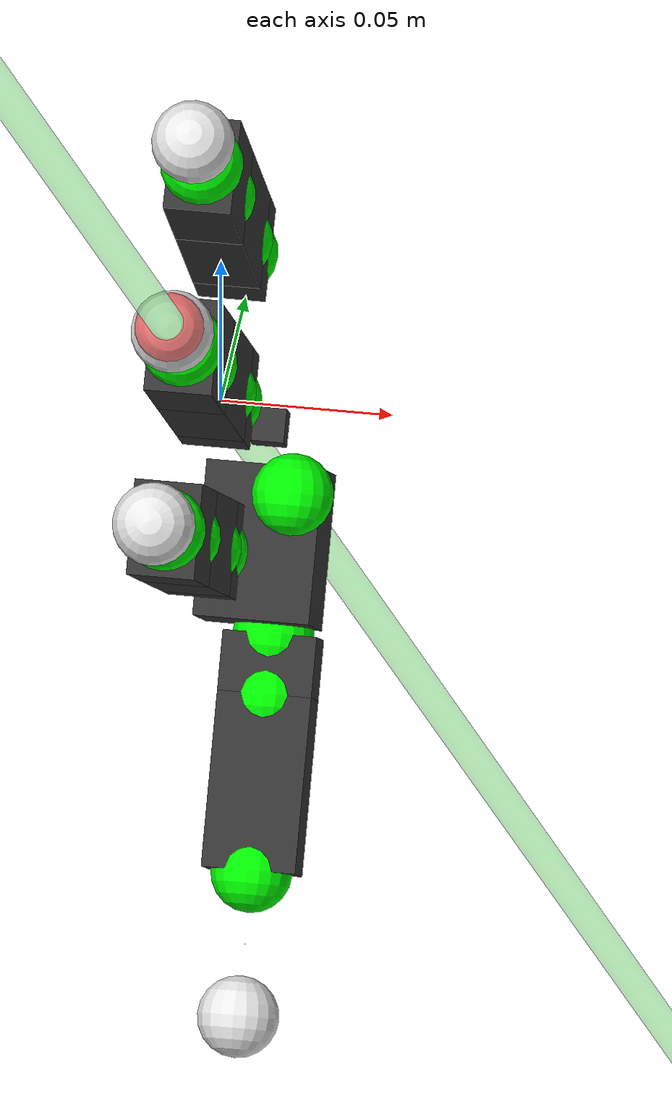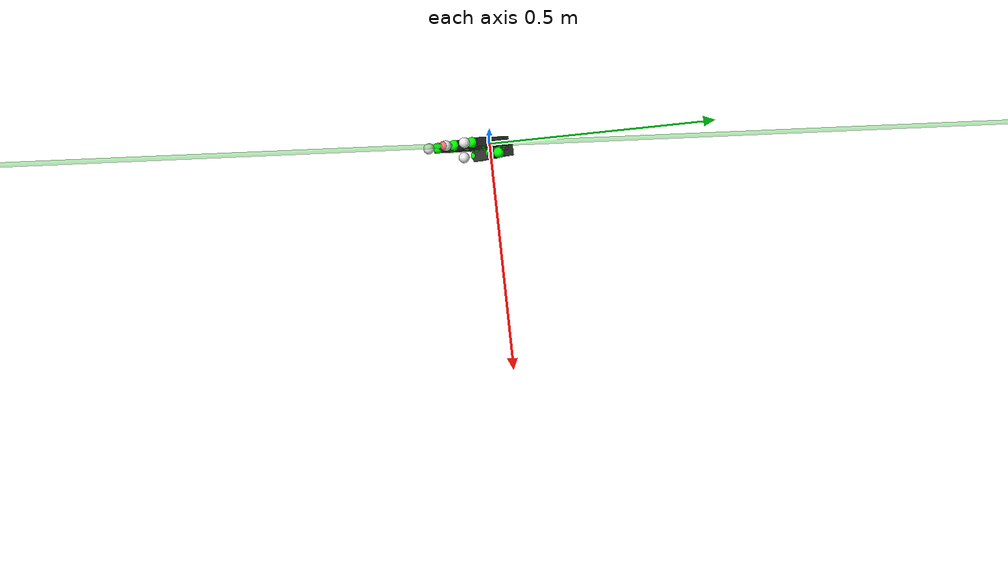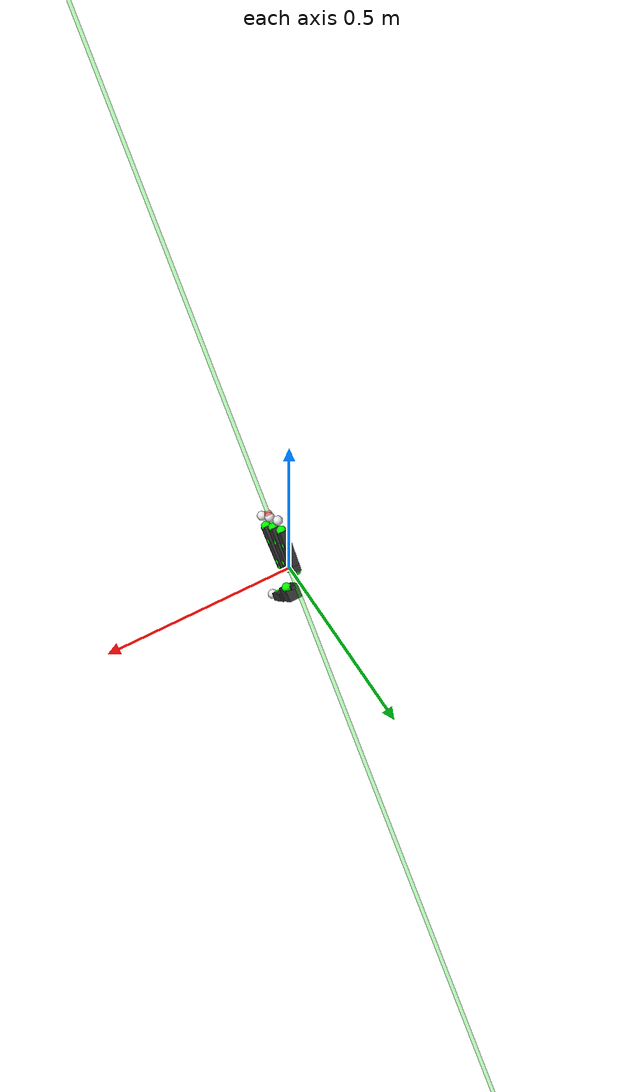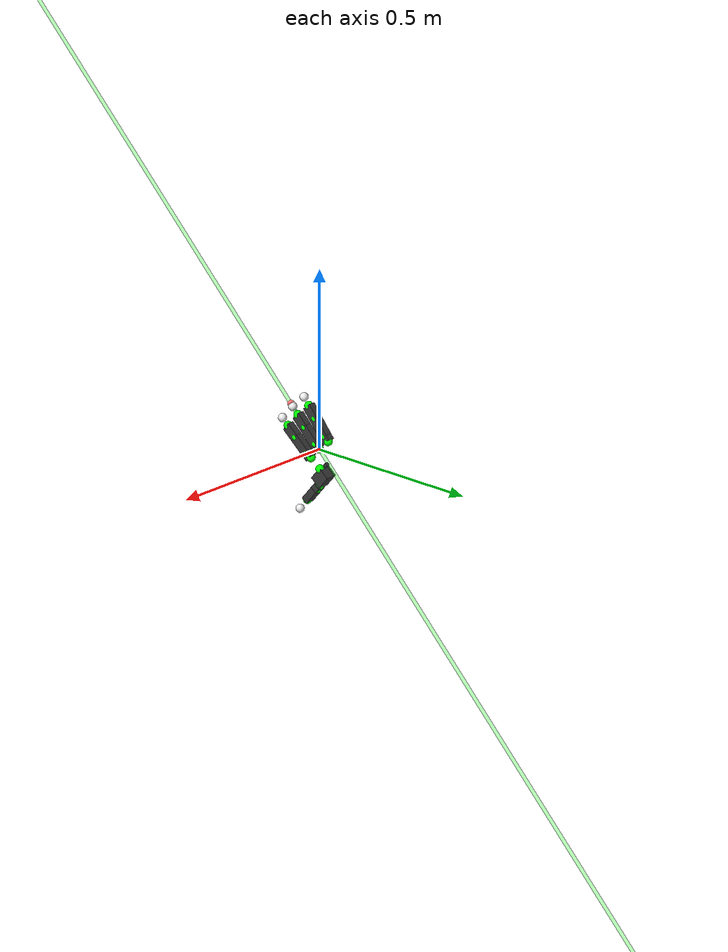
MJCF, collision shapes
<mujoco model="allegro">
  <compiler angle="radian"/>
  <default>
    <joint damping="1"/>
    <muscle ctrllimited="true" ctrlrange="0 100"/>
    <motor ctrllimited="true" ctrlrange="-3 3" gear="1"/>
    <general ctrllimited="true"/>
   </default>

    <contact>
        <exclude body1="allegro_hand" body2="link_12.0"/>
        <exclude body1="allegro_hand" body2="link_0.0"/>
        <exclude body1="allegro_hand" body2="link_4.0"/>
        <exclude body1="allegro_hand" body2="link_8.0"/>
    </contact>

  <asset>
    <mesh name="base_link" file="allegro/meshes/base_link.obj"/>
    <mesh name="link_0.0" file="allegro/meshes/link_0.0.obj"/>
    <mesh name="link_1.0" file="allegro/meshes/link_1.0.obj"/>
    <mesh name="link_2.0" file="allegro/meshes/link_2.0.obj"/>
    <mesh name="link_3.0" file="allegro/meshes/link_3.0.obj"/>
    <mesh name="link_3.0_tip" file="allegro/meshes/link_3.0_tip.obj"/>
    <mesh name="link_12.0_right" file="allegro/meshes/link_12.0_right.obj"/>
    <mesh name="link_13.0" file="allegro/meshes/link_13.0.obj"/>
    <mesh name="link_14.0" file="allegro/meshes/link_14.0.obj"/>
    <mesh name="link_15.0" file="allegro/meshes/link_15.0.obj"/>
    <mesh name="link_15.0_tip" file="allegro/meshes/link_15.0_tip.obj"/>

  </asset>

  <worldbody>
    <body name="allegro_hand" pos="0 0 0" quat=" 0 0 -0.3826834 0.9238795" >
        <site name="ft_frame" pos="0 0 0" size="0.01 0.01 0.01" rgba="1 0 0 1" type="sphere" group="1" />
            <camera name="right_eye_in_hand" pos="-0.0212 0.115 -0.042" quat="0.524567500309  -0.19585314194  -0.69700309  -0.19585314194" fovy="78" resolution="960 600"/>
            <!-- This site was added for visualization. -->
        <body name="eef" pos="0 0 0.145" quat="1 0 0 0">
            <site name="grip_site" pos="0 0 0" size="0.01 0.01 0.01" rgba="1 0 0 0.5" type="sphere" group="1"/>
            <site name="ee_x" pos="0.1 0 0" size="0.005 .1"  quat="1 1 0 0 " rgba="1 0 0 0" type="cylinder" group="1"/>
            <site name="ee_y" pos="0 0.1 0" size="0.005 .1" quat="1 0 0 0" rgba="0 1 0 0" type="cylinder" group="1"/>
            <site name="ee_z" pos="0 0 0.1" size="0.005 .1" quat="1 0 0 0" rgba="0 0 1 0" type="cylinder" group="1"/>
            <!-- This site was added for visualization. -->
            <site name="grip_site_cylinder" pos="0 0 0" size="0.005 10" rgba="0 1 0 0.3" type="cylinder" group="1"/>
        </body>
        <geom type="mesh" contype="0" conaffinity="0" group="1" density="0" rgba="0.2 0.2 0.2 1" mesh="base_link"/>
        <geom size="0.005 0.005 0.005" pos="-0.0093 0 -0.0475" type="box" rgba="0.2 0.2 0.2 1"/>
        <body name="link_0.0" pos="0 0.0435 -0.001542" quat="0.999048 -0.0436194 0 0">
        <inertial pos="0 0 0" quat="0.707107 0.707107 0 0" mass="0.0119" diaginertia="1.01667e-06 1.01667e-06 6.47677e-07"/>
        <joint name="joint_0.0" pos="0 0 0" axis="0 0 1" range="-0.57 0.57" actuatorfrcrange="-0.35 0.35" damping="1.0"/>
            <site name="index_0_site" pos="0 0 0" size="0.012 0.012 0.012" rgba="0 1 0 1" type="sphere" group="2"/>

        <geom type="mesh" contype="0" conaffinity="0" group="1" density="0" rgba="0.2 0.2 0.2 1" mesh="link_0.0"/>
        <geom size="0.0098 0.01375 0.0082" pos="0 0 0.0082" type="box" rgba="0.2 0.2 0.2 1"/>
        <body name="link_1.0" pos="0 0 0.0164">
            <inertial pos="0 0 0" quat="0.702596 0.559386 -0.178354 0.402039" mass="0.065" diaginertia="6.12799e-05 6.12799e-05 6.12799e-05"/>
            <joint name="joint_1.0" pos="0 0 0" axis="0 1 0" range="-0.296 1.71" actuatorfrcrange="-0.35 0.35" damping="1.0"/>
                <site name="index_1_site" pos="0.0 0 0" size="0.012 0.012 0.012" rgba="0 1 0 1" type="sphere" group="2"/>
            <geom type="mesh" contype="0" conaffinity="0" group="1" density="0" rgba="0.2 0.2 0.2 1" mesh="link_1.0"/>
            <geom size="0.0098 0.01375 0.027" pos="0 0 0.027" type="box" rgba="0.2 0.2 0.2 1"/>
            <body name="link_2.0" pos="0 0 0.054">
            <inertial pos="0 0 0" quat="0.719796 0.528175 -0.157463 0.422055" mass="0.0355" diaginertia="2.20969e-05 2.20969e-05 2.20969e-05"/>
            <joint name="joint_2.0" pos="0 0 0" axis="0 1 0" range="-0.274 1.809" actuatorfrcrange="-0.35 0.35" damping="1.0"/>
                <site name="index_2_site" pos="0 0 0" size="0.012 0.012 0.012" rgba="0 1 0 1" type="sphere" group="2"/>

            <geom type="mesh" contype="0" conaffinity="0" group="1" density="0" rgba="0.2 0.2 0.2 1" mesh="link_2.0"/>
            <geom size="0.0098 0.01375 0.0192" pos="0 0 0.0192" type="box" rgba="0.2 0.2 0.2 1"/>
            <body name="link_3.0" pos="0 0 0.0384">
                <inertial pos="0 0 0.0169909" mass="0.0264" diaginertia="9.67371e-06 9.67371e-06 5.3186e-06"/>
                <joint name="joint_3.0" pos="0 0 0" axis="0 1 0" range="-0.327 1.718" actuatorfrcrange="-0.35 0.35" damping="1.0"/>
                    <site name="index_3_site" pos="0 0 0" size="0.012 0.012 0.012" rgba="0 1 0 1" type="sphere" group="2"/>
                <geom type="mesh" contype="0" conaffinity="0" group="1" density="0" rgba="0.2 0.2 0.2 1" mesh="link_3.0"/>
                <geom size="0.0001" pos="0 0 0.01335" rgba="0.2 0.2 0.2 1"/>
                <geom pos="0 0 0.02" quat="1 0 0 0" type="mesh" contype="0" conaffinity="0" group="1" density="0" rgba="0.9 0.9 0.9 1" mesh="digit2_sensor_base"/>
                <geom pos="0 0 0.0267" type="mesh" contype="0" conaffinity="0" group="1" density="0" rgba="0.9 0.9 0.9 1" mesh="link_3.0_tip"/>
                <geom size="0.012" pos="0 0 0.0267" rgba="0.9 0.9 0.9 1"/>
            </body>
            </body>
        </body>
        </body>
        <body name="link_4.0" pos="0 0 0.0007">
        <inertial pos="0 0 0" quat="0.707107 0.707107 0 0" mass="0.0119" diaginertia="1.01667e-06 1.01667e-06 6.47677e-07"/>
        <joint name="joint_4.0" pos="0 0 0" axis="0 0 1" range="-0.57 0.57" actuatorfrcrange="-0.35 0.35" damping="1.0"/>
            <site name="middle_0_site" pos="0 0 0" size="0.012 0.012 0.012" rgba="0 1 0 1" type="sphere" group="2"/>
        <geom type="mesh" contype="0" conaffinity="0" group="1" density="0" rgba="0.2 0.2 0.2 1" mesh="link_0.0"/>
        <geom size="0.0098 0.01375 0.0082" pos="0 0 0.0082" type="box" rgba="0.2 0.2 0.2 1"/>
        <body name="link_5.0" pos="0 0 0.0164">
            <inertial pos="0 0 0" quat="0.702596 0.559386 -0.178354 0.402039" mass="0.065" diaginertia="6.12799e-05 6.12799e-05 6.12799e-05"/>
            <joint name="joint_5.0" pos="0 0 0" axis="0 1 0" range="-0.296 1.71" actuatorfrcrange="-0.35 0.35" damping="1.0"/>
                <site name="middle_1_site" pos="0 0 0" size="0.012 0.012 0.012" rgba="0 1 0 1" type="sphere" group="2"/>

            <geom type="mesh" contype="0" conaffinity="0" group="1" density="0" rgba="0.2 0.2 0.2 1" mesh="link_1.0"/>
            <geom size="0.0098 0.01375 0.027" pos="0 0 0.027" type="box" rgba="0.2 0.2 0.2 1"/>
            <body name="link_6.0" pos="0 0 0.054">
            <inertial pos="0 0 0" quat="0.719796 0.528175 -0.157463 0.422055" mass="0.0355" diaginertia="2.20969e-05 2.20969e-05 2.20969e-05"/>
            <joint name="joint_6.0" pos="0 0 0" axis="0 1 0" range="-0.276 1.809" actuatorfrcrange="-0.35 0.35" damping="1.0"/>
                <site name="middle_2_site" pos="0 0 0" size="0.012 0.012 0.012" rgba="0 1 0 1" type="sphere" group="2"/>

            <geom type="mesh" contype="0" conaffinity="0" group="1" density="0" rgba="0.2 0.2 0.2 1" mesh="link_2.0"/>
            <geom size="0.0098 0.01375 0.0192" pos="0 0 0.0192" type="box" rgba="0.2 0.2 0.2 1"/>
            <body name="link_7.0" pos="0 0 0.0384">
                <inertial pos="0 0 0.0169909" mass="0.0264" diaginertia="9.67371e-06 9.67371e-06 5.3186e-06"/>
                <joint name="joint_7.0" pos="0 0 0" axis="0 1 0" range="-0.327 1.718" actuatorfrcrange="-0.35 0.35" damping="1.0"/>
                    <site name="middle_3_site" pos="0 0 0" size="0.012 0.012 0.012" rgba="0 1 0 1" type="sphere" group="2"/>

                <geom type="mesh" contype="0" conaffinity="0" group="1" density="0" rgba="0.2 0.2 0.2 1" mesh="link_3.0"/>
                <geom size="0.0001" pos="0 0 0.01335" rgba="0.2 0.2 0.2 1"/>
                <geom pos="0 0 0.0267" type="mesh" contype="0" conaffinity="0" group="1" density="0" rgba="0.9 0.9 0.9 1" mesh="link_3.0_tip"/>
                <geom size="0.012" pos="0 0 0.0267" rgba="0.9 0.9 0.9 1"/>
            </body>
            </body>
        </body>
        </body>
        <body name="link_8.0" pos="0 -0.0435 -0.001542" quat="0.999048 0.0436194 0 0">
        <inertial pos="0 0 0" quat="0.707107 0.707107 0 0" mass="0.0119" diaginertia="1.01667e-06 1.01667e-06 6.47677e-07"/>
        <joint name="joint_8.0" pos="0 0 0" axis="0 0 1" range="-0.57 0.57" actuatorfrcrange="-0.35 0.35" damping="1.0"/>
            <site name="pinky_0_site" pos="0 0 0" size="0.012 0.012 0.012" rgba="0 1 0 1" type="sphere" group="2"/>

        <geom type="mesh" contype="0" conaffinity="0" group="1" density="0" rgba="0.2 0.2 0.2 1" mesh="link_0.0"/>
        <geom size="0.0098 0.01375 0.0082" pos="0 0 0.0082" type="box" rgba="0.2 0.2 0.2 1"/>
        <body name="link_9.0" pos="0 0 0.0164">
            <inertial pos="0 0 0" quat="0.702596 0.559386 -0.178354 0.402039" mass="0.065" diaginertia="6.12799e-05 6.12799e-05 6.12799e-05"/>
            <joint name="joint_9.0" pos="0 0 0" axis="0 1 0" range="-0.296 1.71" actuatorfrcrange="-0.35 0.35" damping="1.0"/>
                <site name="pinky_1_site" pos="0 0 0" size="0.012 0.012 0.012" rgba="0 1 0 1" type="sphere" group="2"/>

            <geom type="mesh" contype="0" conaffinity="0" group="1" density="0" rgba="0.2 0.2 0.2 1" mesh="link_1.0"/>
            <geom size="0.0098 0.01375 0.027" pos="0 0 0.027" type="box" rgba="0.2 0.2 0.2 1"/>
            <body name="link_10.0" pos="0 0 0.054">
            <inertial pos="0 0 0" quat="0.719796 0.528175 -0.157463 0.422055" mass="0.0355" diaginertia="2.20969e-05 2.20969e-05 2.20969e-05"/>
            <joint name="joint_10.0" pos="0 0 0" axis="0 1 0" range="-0.276 1.809" actuatorfrcrange="-0.35 0.35" damping="1.0"/>
                <site name="pinky_2_site" pos="0 0 0" size="0.012 0.012 0.012" rgba="0 1 0 1" type="sphere" group="2"/>

            <geom type="mesh" contype="0" conaffinity="0" group="1" density="0" rgba="0.2 0.2 0.2 1" mesh="link_2.0"/>
            <geom size="0.0098 0.01375 0.0192" pos="0 0 0.0192" type="box" rgba="0.2 0.2 0.2 1"/>
            <body name="link_11.0" pos="0 0 0.0384">
                <inertial pos="0 0 0.0169909" mass="0.0264" diaginertia="9.67371e-06 9.67371e-06 5.3186e-06"/>
                <joint name="joint_11.0" pos="0 0 0" axis="0 1 0" range="-0.327 1.718" actuatorfrcrange="-0.35 0.35" damping="1.0"/>
                    <site name="pinky_3_site" pos="0 0 0" size="0.012 0.012 0.012" rgba="0 1 0 1" type="sphere" group="2"/>

                <geom type="mesh" contype="0" conaffinity="0" group="1" density="0" rgba="0.2 0.2 0.2 1" mesh="link_3.0"/>
                <geom size="0.0001" pos="0 0 0.01335" rgba="0.2 0.2 0.2 1"/>
                <geom pos="0 0 0.0267" type="mesh" contype="0" conaffinity="0" group="1" density="0" rgba="0.9 0.9 0.9 1" mesh="link_3.0_tip"/>
                <geom size="0.012" pos="0 0 0.0267" rgba="0.9 0.9 0.9 1"/>
            </body>
            </body>
        </body>
        </body>
        <body name="link_12.0" pos="-0.0182 0.019333 -0.045987" quat="0.477714 -0.521334 -0.521334 -0.477714">
        <inertial pos="0 0 0" quat="0.692635 0.569362 -0.07143 0.437013" mass="0.0176" diaginertia="1.73852e-05 1.73852e-05 1.73852e-05"/>
        <joint name="joint_12.0" pos="0 0 0" axis="-1 0 0" range="0.36 1.496" actuatorfrcrange="-0.35 0.35" damping="1.0"/>
            <site name="thumb_0_site" pos="0 0 0" size="0.012 0.012 0.012" rgba="0 1 0 1" type="sphere" group="2"/>

        <geom quat="8.94897e-10 1 0 0" type="mesh" contype="0" conaffinity="0" group="1" density="0" rgba="0.2 0.2 0.2 1" mesh="link_12.0_right"/>
        <geom size="0.0179 0.017 0.02275" pos="-0.0179 0.009 0.0145" type="box" rgba="0.2 0.2 0.2 1" group="1"/>
        <body name="link_13.0" pos="-0.027 0.005 0.0399">
            <inertial pos="0 0 0" quat="-0.0269589 0.880876 0.334036 0.334292" mass="0.0119" diaginertia="4.33621e-06 4.33621e-06 4.33621e-06"/>
            <joint name="joint_13.0" pos="0 0 0" axis="0 0 1" range="-0.204 1.263" actuatorfrcrange="-0.35 0.35" damping="1.0"/>
                <site name="thumb_1_site" pos="0 0 0" size="0.012 0.012 0.012" rgba="0 1 0 1" type="sphere" group="2"/>

            <geom type="mesh" contype="0" conaffinity="0" group="1" density="0" rgba="0.2 0.2 0.2 1" mesh="link_13.0"/>
            <geom size="0.0098 0.01375 0.00885" pos="0 0 0.00885" type="box" rgba="0.2 0.2 0.2 1"/>
            <body name="link_14.0" pos="0 0 0.0177">
            <inertial pos="0 0 0" quat="0.70472 0.55555 -0.174905 0.405146" mass="0.038" diaginertia="3.35111e-05 3.35111e-05 3.35111e-05"/>
            <joint name="joint_14.0" pos="0 0 0" axis="0 1 0" range="-0.289 1.744" actuatorfrcrange="-0.35 0.35" damping="1.0"/>
                <site name="thumb_2_site" pos="0 0 0" size="0.012 0.012 0.012" rgba="0 1 0 1" type="sphere" group="2"/>

            <geom type="mesh" contype="0" conaffinity="0" group="1" density="0" rgba="0.2 0.2 0.2 1" mesh="link_14.0"/>
            <geom size="0.0098 0.01375 0.0257" pos="0 0 0.0257" type="box" rgba="0.2 0.2 0.2 1"/>
            <body name="link_15.0" pos="0 0 0.0514">
                <inertial pos="0 0 0.0127813" mass="0.0556" diaginertia="4.88098e-05 4.88098e-05 2.78326e-05"/>
                <joint name="joint_15.0" pos="0 0 0" axis="0 1 0" range="-0.262 1.819" actuatorfrcrange="-0.35 0.35" damping="1.0"/>
                    <site name="thumb_3_site" pos="0 0 0" size="0.012 0.012 0.012" rgba="0 1 0 1" type="sphere" group="2"/>

                <geom type="mesh" contype="0" conaffinity="0" group="1" density="0" rgba="0.2 0.2 0.2 1" mesh="link_15.0" />
                <geom size="0.0001" pos="0 0 0.02115" rgba="0.2 0.2 0.2 1"/>
                <geom pos="0 0 0.0423" type="mesh" contype="0" conaffinity="0" group="1" density="0" rgba="0.9 0.9 0.9 1" mesh="link_15.0_tip"/>
                <geom size="0.012" pos="0 0 0.0423" rgba="0.9 0.9 0.9 1"/>
            </body>
            </body>
        </body>
        </body>
    </body>
  </worldbody>
    <actuator>
    <motor joint="joint_0.0" name="joint_0_drive" ctrlrange="-0.35 0.35" />
    <motor joint="joint_1.0" name="joint_1_drive" ctrlrange="-0.35 0.35" />
    <motor joint="joint_2.0" name="joint_2_drive" ctrlrange="-0.35 0.35" />
    <motor joint="joint_3.0" name="joint_3_drive" ctrlrange="-0.35 0.35"  />
    <motor joint="joint_4.0" name="joint_4_drive" ctrlrange="-0.35 0.35"  />
    <motor joint="joint_5.0" name="joint_5_drive" ctrlrange="-0.35 0.35"  />
    <motor joint="joint_6.0" name="joint_6_drive" ctrlrange="-0.35 0.35"  />
    <motor joint="joint_7.0" name="joint_7_drive" ctrlrange="-0.35 0.35"   />
    <motor joint="joint_8.0" name="joint_8_drive" ctrlrange="-0.35 0.35"  />
    <motor joint="joint_9.0" name="joint_9_drive" ctrlrange="-0.35 0.35"  />
    <motor joint="joint_10.0" name="joint_10_drive" ctrlrange="-0.35 0.35"  />
    <motor joint="joint_11.0" name="joint_11_drive" ctrlrange="-0.35 0.35"  />
    <motor joint="joint_12.0" name="joint_12_drive" ctrlrange="-0.35 0.35"  />
    <motor joint="joint_13.0" name="joint_13_drive" ctrlrange="0.0 0.35"   />
    <motor joint="joint_14.0" name="joint_14_drive" ctrlrange="-0.35 0.35"  />
    <motor joint="joint_15.0" name="joint_15_drive" ctrlrange="-0.35 0.35"   />
  </actuator>

    <sensor>
            <force name="force_ee" site="ft_frame"/>
            <torque name="torque_ee" site="ft_frame"/>
    </sensor>

</mujoco>
